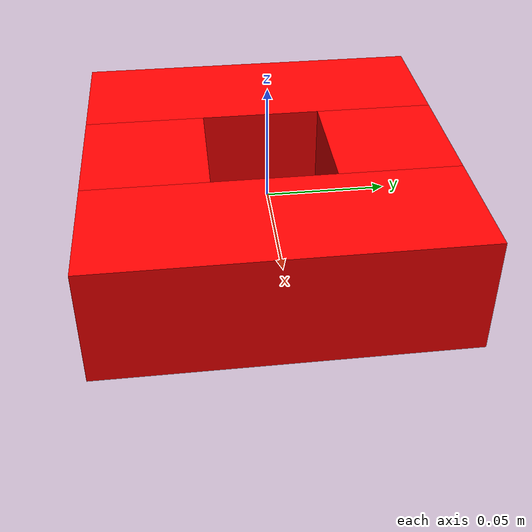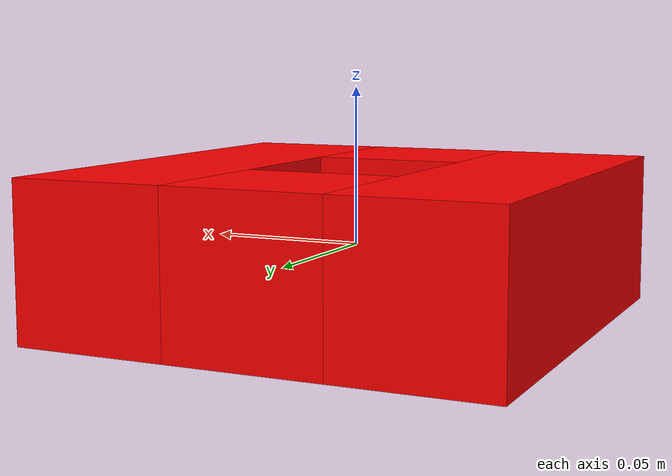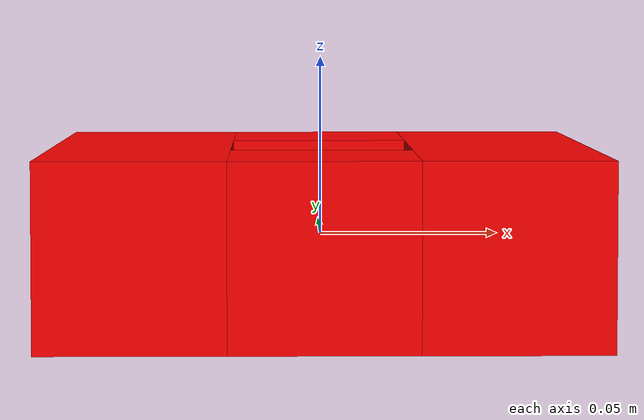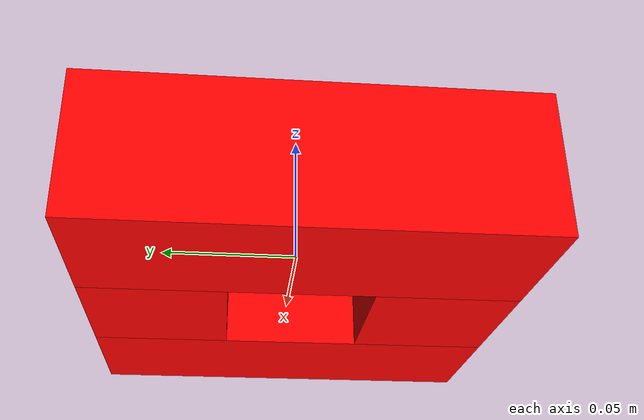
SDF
<?xml version="1.0"?>
<sdf version="1.7">
  <model name="peg_hole">
    <link name="peg_hole_base_link">
      <pose>0 0 0 0 0 0</pose>
    </link>
    <link name="front_link">
      <pose>0 0.05 0 0 0 0</pose>
      <inertial>
        <mass>1.0</mass>
        <inertia>
          <ixx>0.03542</ixx> <ixy>0.0</ixy> <ixz>0.0</ixz>
          <iyy>0.03542</iyy> <iyz>0.0</iyz>
          <izz>0.03542</izz>
        </inertia>
      </inertial>
      <collision name="collision">
        <geometry>
          <box>
            <size>0.05 0.05 0.05</size>
          </box>
        </geometry>
      </collision>
      <visual name="visual">
        <geometry>
          <box>
            <size>0.05 0.05 0.05</size>
          </box>
        </geometry>
        <material>
          <diffuse>1.0 0.0 0.0 1.0</diffuse>
        </material>
      </visual>
    </link>
    <link name="back_link">
      <pose>0 -0.05 0 0 0 0</pose>
      <inertial>
        <mass>1.0</mass>
        <inertia>
          <ixx>0.03542</ixx> <ixy>0.0</ixy> <ixz>0.0</ixz>
          <iyy>0.03542</iyy> <iyz>0.0</iyz>
          <izz>0.03542</izz>
        </inertia>
      </inertial>
      <collision name="collision">
        <geometry>
          <box>
            <size>0.05 0.05 0.05</size>
          </box>
        </geometry>
      </collision>
      <visual name="visual">
        <geometry>
          <box>
            <size>0.05 0.05 0.05</size>
          </box>
        </geometry>
        <material>
          <diffuse>1.0 0.0 0.0 1.0</diffuse>
        </material>
      </visual>
    </link>

    <link name="left_link">
      <pose>-0.05 0 0 0 0 0</pose>
      <inertial>
        <mass>1.0</mass>
        <inertia>
          <ixx>0.1666</ixx> <ixy>0.0</ixy> <ixz>0.0</ixz>
          <iyy>0.1666</iyy> <iyz>0.0</iyz>
          <izz>0.1666</izz>
        </inertia>
      </inertial>
      <collision name="collision">
        <geometry>
          <box>
            <size>0.05 0.15 0.05</size>
          </box>
        </geometry>
        <surface>
          <friction>
            <ode>
              <mu>0.01</mu>
              <mu2>0.01</mu2>
            </ode>
          </friction>
        </surface>
      </collision>
      <visual name="visual">
        <geometry>
          <box>
            <size>0.05 0.15 0.05</size>
          </box>
        </geometry>
        <material>
          <diffuse>1.0 0.0 0.0 1.0</diffuse>
        </material>
      </visual>
    </link>
    <link name="right_link">
      <pose>0.05 0 0 0 0 0</pose>
      <inertial>
        <mass>1.0</mass>
        <inertia>
          <ixx>0.1666</ixx> <ixy>0.0</ixy> <ixz>0.0</ixz>
          <iyy>0.1666</iyy> <iyz>0.0</iyz>
          <izz>0.1666</izz>
        </inertia>
      </inertial>
      <collision name="collision">
        <geometry>
          <box>
            <size>0.05 0.15 0.05</size>
          </box>
        </geometry>
        <surface>
          <friction>
            <ode>
              <mu>0.01</mu>
              <mu2>0.01</mu2>
            </ode>
          </friction>
        </surface>
      </collision>
      <visual name="visual">
        <geometry>
          <box>
            <size>0.05 0.15 0.05</size>
          </box>
        </geometry>
        <material>
          <diffuse>1.0 0.0 0.0 1.0</diffuse>
        </material>
      </visual>
    </link>
    <joint name="base_to_front" type="fixed">
      <parent>peg_hole_base_link</parent>
      <child>front_link</child>
    </joint>
    <joint name="front_to_left" type="fixed">
      <parent>front_link</parent>
      <child>left_link</child>
    </joint>
    <joint name="left_to_back" type="fixed">
      <parent>left_link</parent>
      <child>back_link</child>
    </joint>
    <joint name="back_to_right" type="fixed">
      <parent>back_link</parent>
      <child>right_link</child>
    </joint>
  </model>
</sdf>
